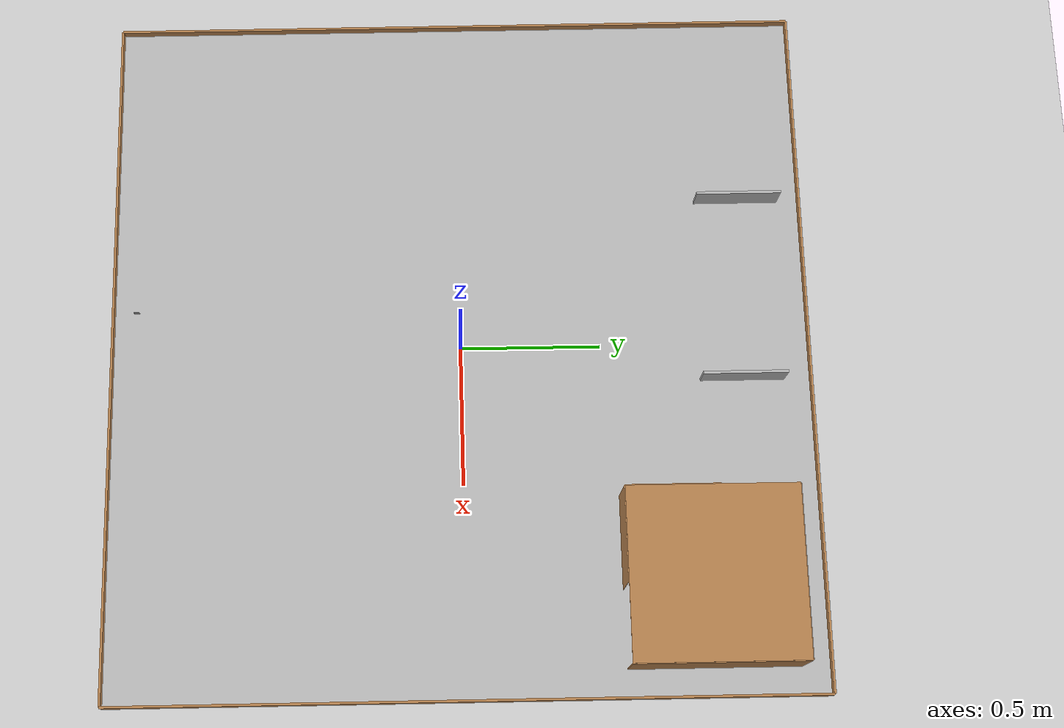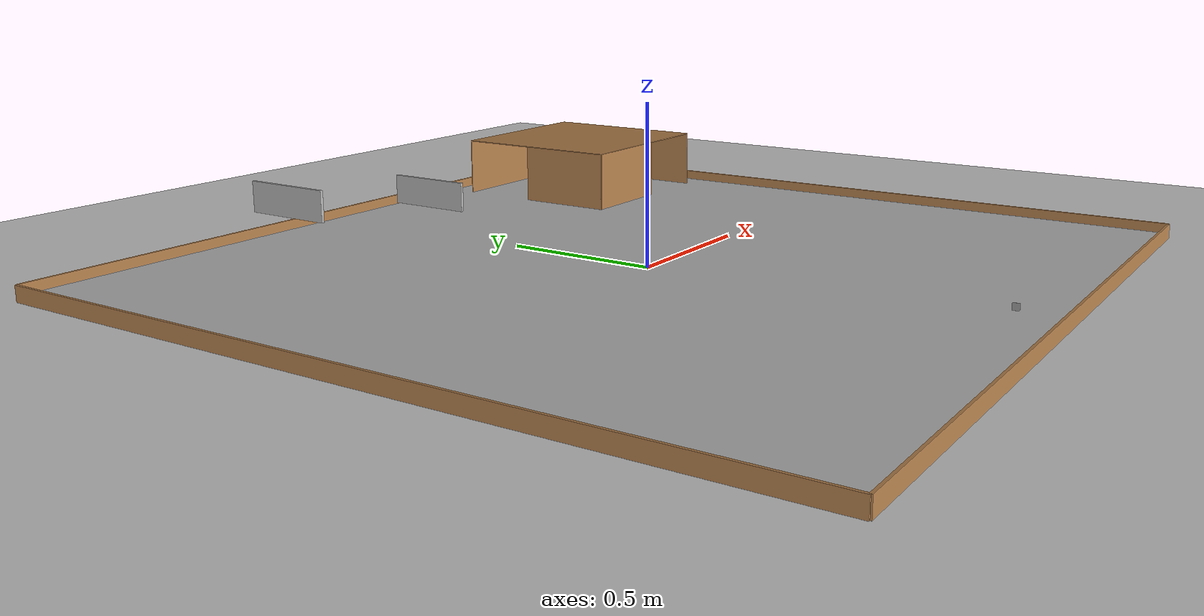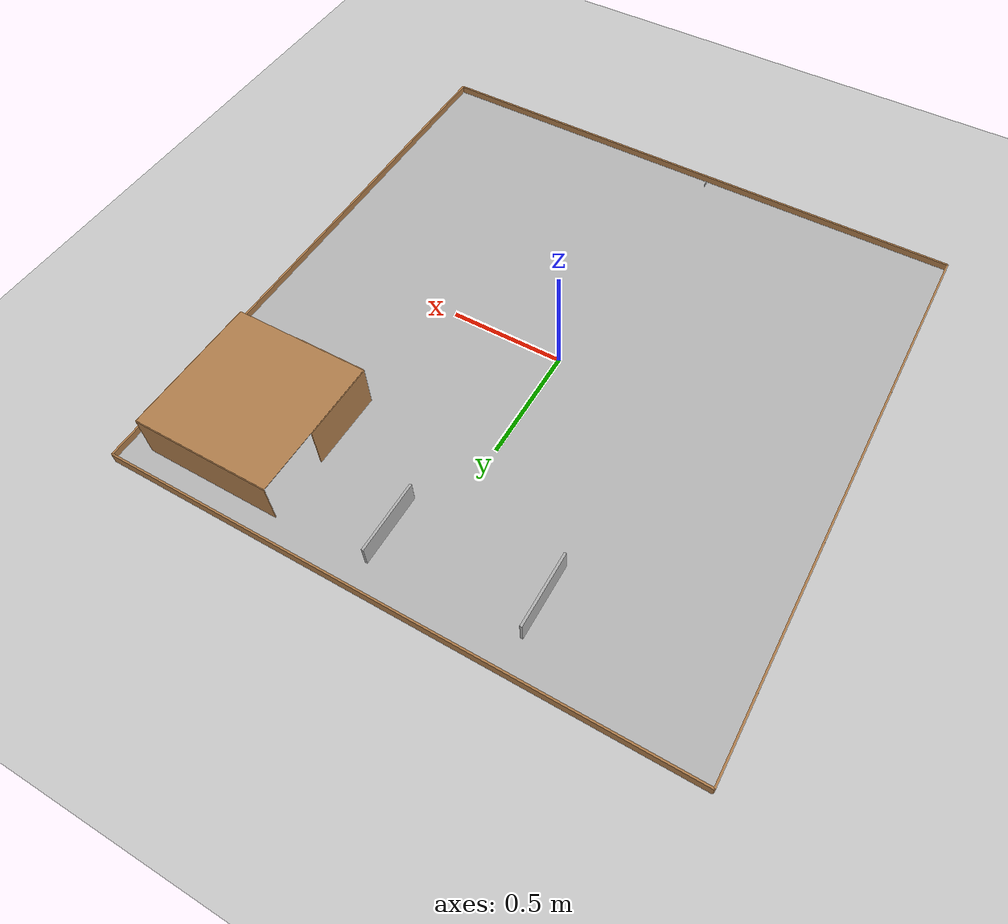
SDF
<sdf version="1.6">
 <world name="default">
  <include><uri>model://ground_plane</uri></include>
  <include><uri>model://soleil</uri><pose>0 0 1 0 0 0</pose></include>
  <model name="arena"><include><static>true</static><uri>model://arena/</uri></include></model>
  <model name="barriere">
   <pose>0.14 1 0.1 0 -0 0</pose>
   <include><static>false</static><uri>model://barriere/</uri></include>
   <plugin name="barriere_plugin" filename="libbarriere_plugin.so"/>
  </model>
  <model name="barriere2">
   <pose>-0.50 1 0.18 0 -0 0</pose>
   <include>
    <static>false</static>
    <uri>model://barriere/</uri>
    <plugin name="barriere_plugin2" filename="libbarriere_plugin2.so"/>
   </include>
  </model>
  <model name="cache_feu">
   <include><static>false</static><uri>model://cache_feu/</uri></include>
   <plugin name="feu_plugin" filename="libfeu_plugin.so"/>
  </model>
 </world>
</sdf>

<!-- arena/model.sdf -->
<sdf version="1.6">
  <model name="Arena Test">
    <pose> 0 0 0.009 0 0 0 </pose>
    <static>true</static>
    <link name="arena">
      <!-- Sol de l'arène -->
      <collision name="arena_collision">
        <geometry>
          <box>
            <size>2.5 2.5 0.018</size>
          </box>
        </geometry>
      </collision>

      <visual name="arena_visual">
        <geometry>
          <box>
            <size>2.5 2.5 0.018</size>
          </box>
        </geometry>
	<material>
	  <script>
		<uri>model://arena/materials/scripts/</uri>
		<uri>model://arena/materials/textures/</uri>
	  	<name>TextureArene</name>
	  </script>
	</material>
      </visual>

      <!-- Tunnel top -->
      <collision name="tunnel_top_collision">
	<pose>0.85 0.85 0.209 0 0 0</pose>
        <geometry>
          <box>
            <size>0.6 0.6 0.003</size>
          </box>
        </geometry>
      </collision>

      <visual name="tunnel_top_visual">
	<pose>0.85 0.85 0.209 0 0 0</pose>
        <geometry>
          <box>
            <size>0.6 0.6 0.003</size>
          </box>
        </geometry>
	<material>
	  <script>
		<name>Gazebo/Wood</name> <!-- Texture bois pour la planche -->
	  </script>
	</material>
      </visual>

      <!-- Tunnel side -->
      <collision name="tunnel_side_collision1">
	<pose>0.85 1.1515 0.109 0 0 0</pose>
        <geometry>
          <box>
            <size>0.6 0.003 0.2</size>
          </box>
        </geometry>
      </collision>

      <visual name="tunnel_side_visual1">
	<pose>0.85 1.1515 0.109 0 0 0</pose>
        <geometry>
          <box>
            <size>0.6 0.003 0.2</size>
          </box>
        </geometry>
	<material>
	  <script>
		<name>Gazebo/Wood</name> <!-- Texture bois pour la planche -->
	  </script>
	</material>
      </visual>

      <!-- Tunnel side -->
      <collision name="tunnel_side_collision2">
	<pose>1.1515 0.85 0.109 0 0 0</pose>
        <geometry>
          <box>
            <size>0.003 0.6 0.2</size>
          </box>
        </geometry>
      </collision>

      <visual name="tunnel_side_visual2">
	<pose>1.1515 0.85 0.109 0 0 0</pose>
        <geometry>
          <box>
            <size>0.003 0.6 0.2</size>
          </box>
        </geometry>
	<material>
	  <script>
		<name>Gazebo/Wood</name> <!-- Texture bois pour la planche -->
	  </script>
	</material>
      </visual>

      <!-- Tunnel side -->
      <collision name="tunnel_side_collision3">
	<pose>0.715 0.5485 0.109 0 0 0</pose>
        <geometry>
          <box>
            <size>0.33 0.003 0.2</size>
          </box>
        </geometry>
      </collision>

      <visual name="tunnel_side_visual3">
	<pose>0.715 0.5485 0.109 0 0 0</pose>
        <geometry>
          <box>
            <size>0.33 0.003 0.2</size>
          </box>
        </geometry>
	<material>
	  <script>
		<name>Gazebo/Wood</name> <!-- Texture bois pour la planche -->
	  </script>
	</material>
      </visual>

      <!-- Tunnel side -->
      <collision name="tunnel_side_collision4">
	<pose>0.5485 0.715 0.109 0 0 0</pose>
        <geometry>
          <box>
            <size>0.003 0.33 0.2</size>
          </box>
        </geometry>
      </collision>
      <visual name="tunnel_side_visual4">
	<pose>0.5485 0.715 0.109 0 0 0</pose>
        <geometry>
          <box>
            <size>0.003 0.33 0.2</size>
          </box>
        </geometry>
	<material>
	  <script>
		<name>Gazebo/Wood</name> <!-- Texture bois pour la planche -->
	  </script>
	</material>
      </visual>

      <!-- Bordure de l'arène -->
      <collision name="border_collision1">
	<pose>-1.25 0 0.016 0 0 0</pose>
        <geometry>
          <box>
            <size>0.008 2.5 0.05</size>
          </box>
        </geometry>
      </collision>

      <visual name="border_visual1">
	<pose>-1.25 0 0.016 0 0 0</pose>
        <geometry>
          <box>
            <size>0.008 2.5 0.05</size>
          </box>
        </geometry>
	<material>
	  <script>
		<name>Gazebo/Wood</name> <!-- Texture bois pour la planche -->
	  </script>
	</material>
      </visual>

      <!-- Bordure de l'arène -->
      <collision name="border_collision2">
	<pose>1.25 0 0.016 0 0 0</pose>
        <geometry>
          <box>
            <size>0.008 2.5 0.05</size>
          </box>
        </geometry>
      </collision>

      <visual name="border_visual2">
	<pose>1.25 0 0.016 0 0 0</pose>
        <geometry>
          <box>
            <size>0.008 2.5 0.05</size>
          </box>
        </geometry>
	<material>
	  <script>
		<name>Gazebo/Wood</name> <!-- Texture bois pour la planche -->
	  </script>
	</material>
      </visual>

      <!-- Bordure de l'arène -->
      <collision name="border_collision3">
	<pose>0 -1.25 0.016 0 0 0</pose>
        <geometry>
          <box>
            <size>2.5 0.008 0.05</size>
          </box>
        </geometry>
      </collision>

      <visual name="border_visual3">
	<pose>0 -1.25 0.016 0 0 0</pose>
        <geometry>
          <box>
            <size>2.5 0.008 0.05</size>
          </box>
        </geometry>
	<material>
	  <script>
		<name>Gazebo/Wood</name> <!-- Texture bois pour la planche -->
	  </script>
	</material>
      </visual>

      <!-- Bordure de l'arène -->
      <collision name="border_collision4">
	<pose>0 1.25 0.016 0 0 0</pose>
        <geometry>
          <box>
            <size>2.5 0.008 0.05</size>
          </box>
        </geometry>
      </collision>

      <visual name="border_visual4">
	<pose>0 1.25 0.016 0 0 0</pose>
        <geometry>
          <box>
            <size>2.5 0.008 0.05</size>
          </box>
        </geometry>
	<material>
	  <script>
		<name>Gazebo/Wood</name> <!-- Texture bois pour la planche -->
	  </script>
	</material>
      </visual>
    </link>

  </model>
</sdf>

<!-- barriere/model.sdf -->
<sdf version='1.6'>
  <model name='barriere'>
    <link name='Barriere::barriere'>
      <pose frame=''>0 0 0 0 0 0</pose>
      <inertial>
        <mass>200</mass>
        <inertia>
          <ixx>1.166667</ixx>
          <ixy>0</ixy>
          <ixz>0</ixz>
          <iyy>1.166667</iyy>
          <iyz>0</iyz>
          <izz>1.166667</izz>
        </inertia>
        <pose frame=''>0 0 0 0 -0 0</pose>
      </inertial>
      <self_collide>0</self_collide>
      <kinematic>0</kinematic>
      <gravity>0</gravity>
      <visual name='visual'>
        <pose frame=''>0 0 0 0 -0 0</pose>
        <geometry>
          <box>
            <size>0.01 0.3 0.1</size>
          </box>
        </geometry>
        <material>
          <lighting>1</lighting>
          <script>
		<uri>model://barriere/materials/scripts/</uri>
		<uri>model://barriere/materials/textures/</uri>
	  	<name>TextureBarriere</name>
	  </script>
          <ambient>0.8 0.8 0.8 1</ambient>
          <diffuse>0.7 0.7 0.7 1</diffuse>
          <specular>0.01 0.01 0.01 1</specular>
          <emissive>0.3 0.3 0.3 1</emissive>
          <shader type='vertex'>
            <normal_map>__default__</normal_map>
          </shader>
        </material>
        <cast_shadows>1</cast_shadows>
        <transparency>0</transparency>
      </visual>
      <collision name='collision'>
        <laser_retro>0</laser_retro>
        <max_contacts>10</max_contacts>
        <pose frame=''>0 0 0 0 -0 0</pose>
        <geometry>
          <box>
            <size>0.01 0.3 0.1</size>
          </box>
        </geometry>
        <surface>
          <friction>
            <ode>
              <mu>1</mu>
              <mu2>1</mu2>
              <fdir1>0 0 0</fdir1>
              <slip1>0</slip1>
              <slip2>0</slip2>
            </ode>
            <torsional>
              <coefficient>1</coefficient>
              <patch_radius>0</patch_radius>
              <surface_radius>0</surface_radius>
              <use_patch_radius>1</use_patch_radius>
              <ode>
                <slip>0</slip>
              </ode>
            </torsional>
          </friction>
          <bounce>
            <restitution_coefficient>0</restitution_coefficient>
            <threshold>1e+06</threshold>
          </bounce>
          <contact>
            <collide_without_contact>0</collide_without_contact>
            <collide_without_contact_bitmask>1</collide_without_contact_bitmask>
            <collide_bitmask>1</collide_bitmask>
            <ode>
              <soft_cfm>0</soft_cfm>
              <soft_erp>0.2</soft_erp>
              <kp>1e+13</kp>
              <kd>1</kd>
              <max_vel>0.01</max_vel>
              <min_depth>0</min_depth>
            </ode>
            <bullet>
              <split_impulse>1</split_impulse>
              <split_impulse_penetration_threshold>-0.01</split_impulse_penetration_threshold>
              <soft_cfm>0</soft_cfm>
              <soft_erp>0.2</soft_erp>
              <kp>1e+13</kp>
              <kd>1</kd>
            </bullet>
          </contact>
        </surface>
      </collision>
    </link>
    <allow_auto_disable>1</allow_auto_disable>
  </model>
</sdf>

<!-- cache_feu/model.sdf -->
<sdf version='1.6'>
  <model name='cache_feu'>
    <link name='link_0'>
      <pose frame=''>-0.130406 -1.156825 0.090249 0 -0 0</pose>
      <inertial>
        <mass>1</mass>
        <inertia>
          <ixx>0.166667</ixx>
          <ixy>0</ixy>
          <ixz>0</ixz>
          <iyy>0.166667</iyy>
          <iyz>0</iyz>
          <izz>0.166667</izz>
        </inertia>
        <pose frame=''>0 0 0 0 -0 0</pose>
      </inertial>
      <gravity>0</gravity>
      <self_collide>0</self_collide>
      <kinematic>0</kinematic>
      <visual name='visual'>
        <pose frame=''>0 0 0 0 -0 0</pose>
        <geometry>
          <box>
            <size>0.001 0.02024 0.02024</size>
          </box>
        </geometry>
        <material>
          <lighting>1</lighting>
          <script>
            <uri>file://media/materials/scripts/gazebo.material</uri>
            <name>Gazebo/Grey</name>
          </script>
          <shader type='pixel'>
            <normal_map>__default__</normal_map>
          </shader>
          <ambient>0.3 0.3 0.3 1</ambient>
          <diffuse>0.7 0.7 0.7 1</diffuse>
          <specular>0.01 0.01 0.01 1</specular>
          <emissive>0 0 0 1</emissive>
        </material>
        <transparency>0</transparency>
        <cast_shadows>1</cast_shadows>
      </visual>
      <collision name='collision'>
        <laser_retro>0</laser_retro>
        <max_contacts>10</max_contacts>
        <pose frame=''>0 0 0 0 -0 0</pose>
        <geometry>
          <box>
            <size>0.001 0.02024 0.02024</size>
          </box>
        </geometry>
        <surface>
          <friction>
            <ode>
              <mu>1</mu>
              <mu2>1</mu2>
              <fdir1>0 0 0</fdir1>
              <slip1>0</slip1>
              <slip2>0</slip2>
            </ode>
            <torsional>
              <coefficient>1</coefficient>
              <patch_radius>0</patch_radius>
              <surface_radius>0</surface_radius>
              <use_patch_radius>1</use_patch_radius>
              <ode>
                <slip>0</slip>
              </ode>
            </torsional>
          </friction>
          <bounce>
            <restitution_coefficient>0</restitution_coefficient>
            <threshold>1e+06</threshold>
          </bounce>
          <contact>
            <collide_without_contact>0</collide_without_contact>
            <collide_without_contact_bitmask>1</collide_without_contact_bitmask>
            <collide_bitmask>1</collide_bitmask>
            <ode>
              <soft_cfm>0</soft_cfm>
              <soft_erp>0.2</soft_erp>
              <kp>1e+13</kp>
              <kd>1</kd>
              <max_vel>0.01</max_vel>
              <min_depth>0</min_depth>
            </ode>
            <bullet>
              <split_impulse>1</split_impulse>
              <split_impulse_penetration_threshold>-0.01</split_impulse_penetration_threshold>
              <soft_cfm>0</soft_cfm>
              <soft_erp>0.2</soft_erp>
              <kp>1e+13</kp>
              <kd>1</kd>
            </bullet>
          </contact>
        </surface>
      </collision>
    </link>
    <static>0</static>
    <allow_auto_disable>1</allow_auto_disable>
  </model>
</sdf>
